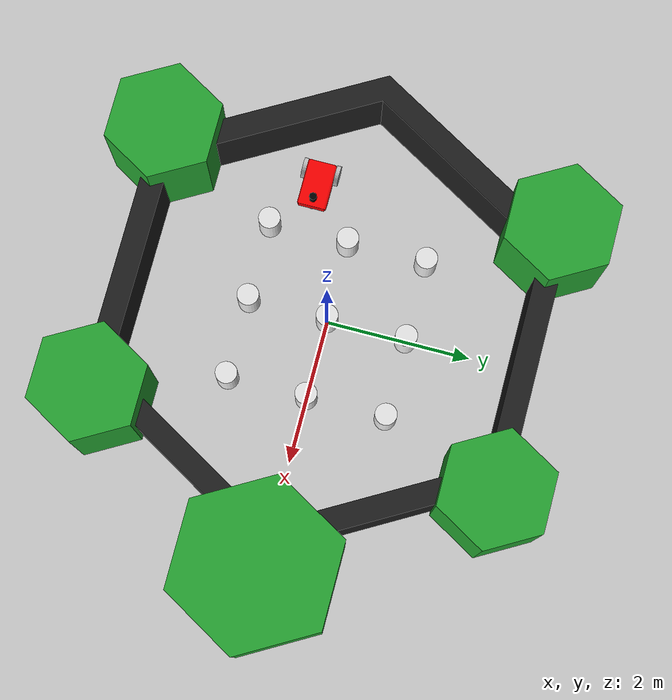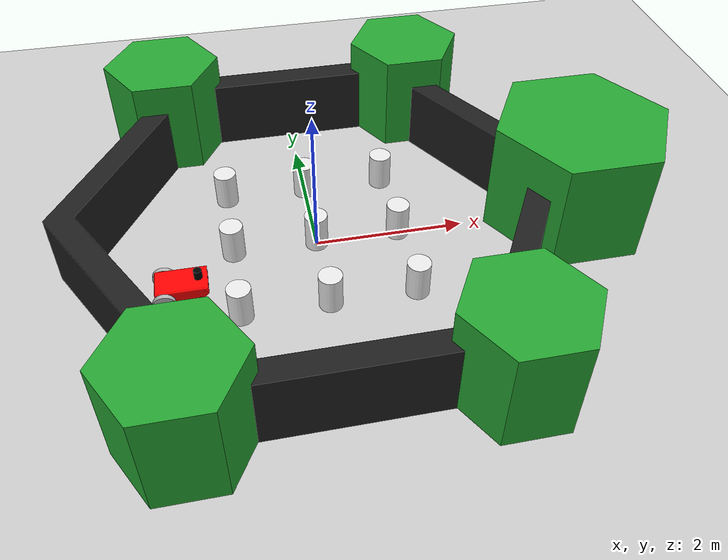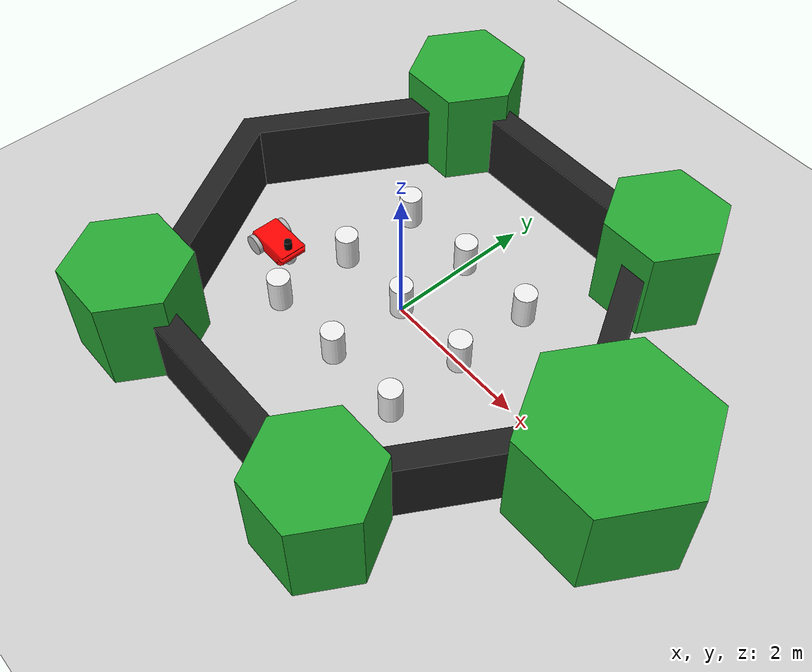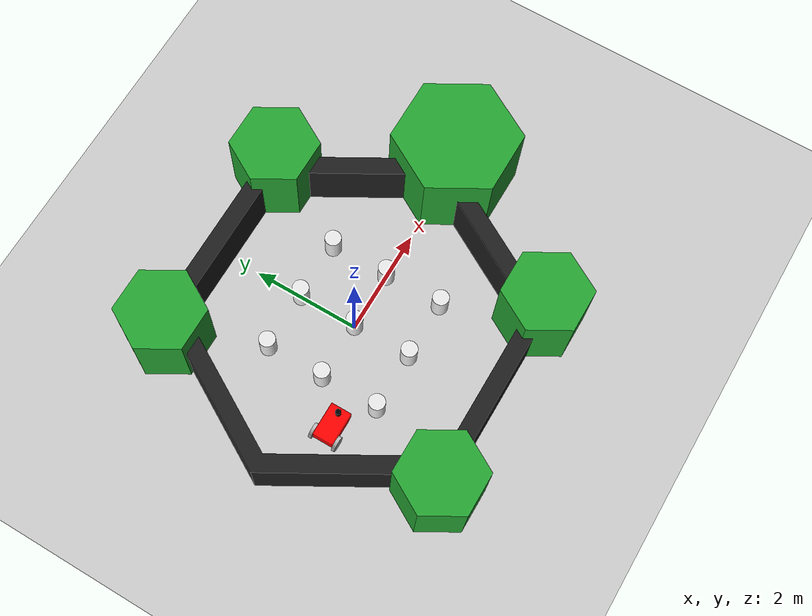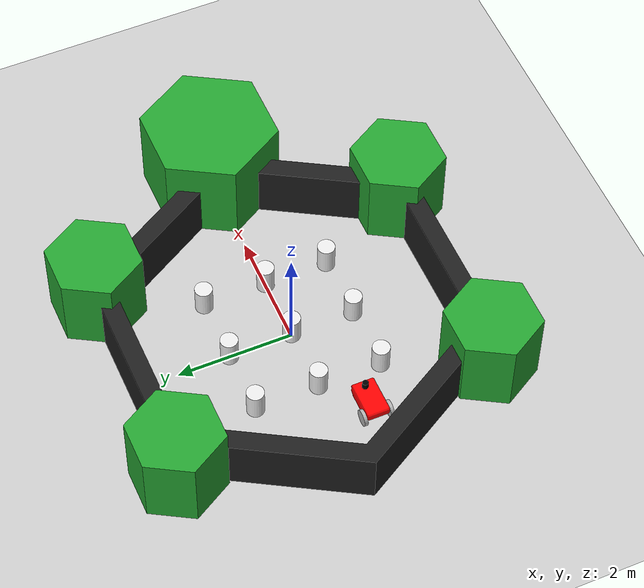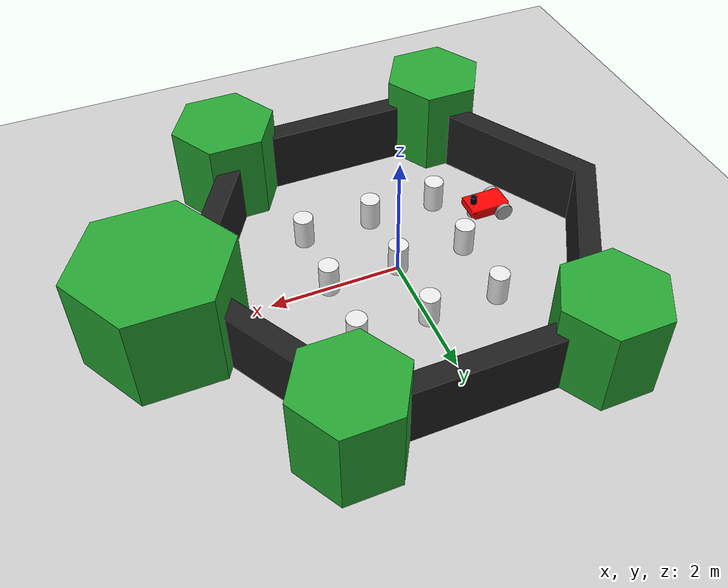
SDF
<sdf version="1.7">
 <world name="default">
  <model name="ground_plane">
   <static>1</static>
   <link name="link">
    <collision name="collision">
     <geometry><plane><normal>0 0 1</normal><size>100 100</size></plane></geometry>
     <surface>
      <contact><collide_bitmask>65535</collide_bitmask></contact>
      <friction><ode><mu>100</mu><mu2>50</mu2></ode></friction>
     </surface>
    </collision>
    <visual name="visual">
     <cast_shadows>0</cast_shadows>
     <geometry><plane><normal>0 0 1</normal><size>100 100</size></plane></geometry>
     <material>
      <script><uri>file://media/materials/scripts/gazebo.material</uri><name>Gazebo/Grey</name></script>
     </material>
    </visual>
   </link>
  </model>
  <light name="sun" type="directional">
   <pose>0 0 10 0 -0 0</pose>
   <diffuse>0.8 0.8 0.8 1</diffuse>
   <specular>0.2 0.2 0.2 1</specular>
   <attenuation>
    <range>1000</range>
    <constant>0.9</constant>
    <linear>0.01</linear>
    <quadratic>0.001</quadratic>
   </attenuation>
   <direction>-0.5 0.1 -0.9</direction>
   <spot><inner_angle>0</inner_angle><outer_angle>0</outer_angle><falloff>0</falloff></spot>
  </light>
  <scene><shadows>0</shadows><ambient>0.4 0.4 0.4 1</ambient><background>0.7 0.7 0.7 1</background></scene>
  <physics type="ode">
   <real_time_update_rate>1000</real_time_update_rate>
   <max_step_size>0.001</max_step_size>
   <real_time_factor>1</real_time_factor>
   <ode>
    <solver>
     <type>quick</type>
     <iters>150</iters>
     <precon_iters>0</precon_iters>
     <sor>1.4</sor>
     <use_dynamic_moi_rescaling>1</use_dynamic_moi_rescaling>
    </solver>
    <constraints>
     <cfm>1e-05</cfm>
     <erp>0.2</erp>
     <contact_max_correcting_vel>2000</contact_max_correcting_vel>
     <contact_surface_layer>0.01</contact_surface_layer>
    </constraints>
   </ode>
  </physics>
  <model name="turtlebot3_world">
   <static>1</static>
   <frame name="ros_symbol::__model__" attached_to="ros_symbol::symbol">
    <pose relative_to="__model__">0 0 0 0 -0 0</pose>
   </frame>
   <static>1</static>
   <link name="ros_symbol::symbol">
    <collision name="one_one">
     <pose>-1.1 -1.1 0.25 0 -0 0</pose>
     <geometry><cylinder><radius>0.15</radius><length>0.5</length></cylinder></geometry>
    </collision>
    <visual name="one_one">
     <pose>-1.1 -1.1 0.25 0 -0 0</pose>
     <geometry><cylinder><radius>0.15</radius><length>0.5</length></cylinder></geometry>
     <material>
      <script><uri>file://media/materials/scripts/gazebo.material</uri><name>Gazebo/White</name></script>
     </material>
    </visual>
    <collision name="one_two">
     <pose>-1.1 0 0.25 0 -0 0</pose>
     <geometry><cylinder><radius>0.15</radius><length>0.5</length></cylinder></geometry>
    </collision>
    <visual name="one_two">
     <pose>-1.1 0 0.25 0 -0 0</pose>
     <geometry><cylinder><radius>0.15</radius><length>0.5</length></cylinder></geometry>
     <material>
      <script><uri>file://media/materials/scripts/gazebo.material</uri><name>Gazebo/White</name></script>
     </material>
    </visual>
    <collision name="one_three">
     <pose>-1.1 1.1 0.25 0 -0 0</pose>
     <geometry><cylinder><radius>0.15</radius><length>0.5</length></cylinder></geometry>
    </collision>
    <visual name="one_three">
     <pose>-1.1 1.1 0.25 0 -0 0</pose>
     <geometry><cylinder><radius>0.15</radius><length>0.5</length></cylinder></geometry>
     <material>
      <script><uri>file://media/materials/scripts/gazebo.material</uri><name>Gazebo/White</name></script>
     </material>
    </visual>
    <collision name="two_one">
     <pose>0 -1.1 0.25 0 -0 0</pose>
     <geometry><cylinder><radius>0.15</radius><length>0.5</length></cylinder></geometry>
    </collision>
    <visual name="two_one">
     <pose>0 -1.1 0.25 0 -0 0</pose>
     <geometry><cylinder><radius>0.15</radius><length>0.5</length></cylinder></geometry>
     <material>
      <script><uri>file://media/materials/scripts/gazebo.material</uri><name>Gazebo/White</name></script>
     </material>
    </visual>
    <collision name="two_two">
     <pose>0 0 0.25 0 -0 0</pose>
     <geometry><cylinder><radius>0.15</radius><length>0.5</length></cylinder></geometry>
    </collision>
    <visual name="two_two">
     <pose>0 0 0.25 0 -0 0</pose>
     <geometry><cylinder><radius>0.15</radius><length>0.5</length></cylinder></geometry>
     <material>
      <script><uri>file://media/materials/scripts/gazebo.material</uri><name>Gazebo/White</name></script>
     </material>
    </visual>
    <collision name="two_three">
     <pose>0 1.1 0.25 0 -0 0</pose>
     <geometry><cylinder><radius>0.15</radius><length>0.5</length></cylinder></geometry>
    </collision>
    <visual name="two_three">
     <pose>0 1.1 0.25 0 -0 0</pose>
     <geometry><cylinder><radius>0.15</radius><length>0.5</length></cylinder></geometry>
     <material>
      <script><uri>file://media/materials/scripts/gazebo.material</uri><name>Gazebo/White</name></script>
     </material>
    </visual>
    <collision name="three_one">
     <pose>1.1 -1.1 0.25 0 -0 0</pose>
     <geometry><cylinder><radius>0.15</radius><length>0.5</length></cylinder></geometry>
    </collision>
    <visual name="three_one">
     <pose>1.1 -1.1 0.25 0 -0 0</pose>
     <geometry><cylinder><radius>0.15</radius><length>0.5</length></cylinder></geometry>
     <material>
      <script><uri>file://media/materials/scripts/gazebo.material</uri><name>Gazebo/White</name></script>
     </material>
    </visual>
    <collision name="three_two">
     <pose>1.1 0 0.25 0 -0 0</pose>
     <geometry><cylinder><radius>0.15</radius><length>0.5</length></cylinder></geometry>
    </collision>
    <visual name="three_two">
     <pose>1.1 0 0.25 0 -0 0</pose>
     <geometry><cylinder><radius>0.15</radius><length>0.5</length></cylinder></geometry>
     <material>
      <script><uri>file://media/materials/scripts/gazebo.material</uri><name>Gazebo/White</name></script>
     </material>
    </visual>
    <collision name="three_three">
     <pose>1.1 1.1 0.25 0 -0 0</pose>
     <geometry><cylinder><radius>0.15</radius><length>0.5</length></cylinder></geometry>
    </collision>
    <visual name="three_three">
     <pose>1.1 1.1 0.25 0 -0 0</pose>
     <geometry><cylinder><radius>0.15</radius><length>0.5</length></cylinder></geometry>
     <material>
      <script><uri>file://media/materials/scripts/gazebo.material</uri><name>Gazebo/White</name></script>
     </material>
    </visual>
    <collision name="head">
     <pose>3.5 0 -0.5 0 -0 0</pose>
     <geometry>
      <mesh><uri>model://turtlebot3_world/meshes/hexagon.dae</uri><scale>0.8 0.8 0.8</scale></mesh>
     </geometry>
    </collision>
    <visual name="head">
     <pose>3.5 0 -0.5 0 -0 0</pose>
     <geometry>
      <mesh><uri>model://turtlebot3_world/meshes/hexagon.dae</uri><scale>0.8 0.8 0.8</scale></mesh>
     </geometry>
     <material>
      <script><uri>file://media/materials/scripts/gazebo.material</uri><name>Gazebo/Green</name></script>
     </material>
    </visual>
    <collision name="left_hand">
     <pose>1.8 2.7 0 0 -0 0</pose>
     <geometry>
      <mesh><uri>model://turtlebot3_world/meshes/hexagon.dae</uri><scale>0.55 0.55 0.55</scale></mesh>
     </geometry>
    </collision>
    <visual name="left_hand">
     <pose>1.8 2.7 0 0 -0 0</pose>
     <geometry>
      <mesh><uri>model://turtlebot3_world/meshes/hexagon.dae</uri><scale>0.55 0.55 0.55</scale></mesh>
     </geometry>
     <material>
      <script><uri>file://media/materials/scripts/gazebo.material</uri><name>Gazebo/Green</name></script>
     </material>
    </visual>
    <collision name="right_hand">
     <pose>1.8 -2.7 0 0 -0 0</pose>
     <geometry>
      <mesh><uri>model://turtlebot3_world/meshes/hexagon.dae</uri><scale>0.55 0.55 0.55</scale></mesh>
     </geometry>
    </collision>
    <visual name="right_hand">
     <pose>1.8 -2.7 0 0 -0 0</pose>
     <geometry>
      <mesh><uri>model://turtlebot3_world/meshes/hexagon.dae</uri><scale>0.55 0.55 0.55</scale></mesh>
     </geometry>
     <material>
      <script><uri>file://media/materials/scripts/gazebo.material</uri><name>Gazebo/Green</name></script>
     </material>
    </visual>
    <collision name="left_foot">
     <pose>-1.8 2.7 0 0 -0 0</pose>
     <geometry>
      <mesh><uri>model://turtlebot3_world/meshes/hexagon.dae</uri><scale>0.55 0.55 0.55</scale></mesh>
     </geometry>
    </collision>
    <visual name="left_foot">
     <pose>-1.8 2.7 0 0 -0 0</pose>
     <geometry>
      <mesh><uri>model://turtlebot3_world/meshes/hexagon.dae</uri><scale>0.55 0.55 0.55</scale></mesh>
     </geometry>
     <material>
      <script><uri>file://media/materials/scripts/gazebo.material</uri><name>Gazebo/Green</name></script>
     </material>
    </visual>
    <collision name="right_foot">
     <pose>-1.8 -2.7 0 0 -0 0</pose>
     <geometry>
      <mesh><uri>model://turtlebot3_world/meshes/hexagon.dae</uri><scale>0.55 0.55 0.55</scale></mesh>
     </geometry>
    </collision>
    <visual name="right_foot">
     <pose>-1.8 -2.7 0 0 -0 0</pose>
     <geometry>
      <mesh><uri>model://turtlebot3_world/meshes/hexagon.dae</uri><scale>0.55 0.55 0.55</scale></mesh>
     </geometry>
     <material>
      <script><uri>file://media/materials/scripts/gazebo.material</uri><name>Gazebo/Green</name></script>
     </material>
    </visual>
    <collision name="body">
     <pose>0 0 -0.3 0 0 -1.5708</pose>
     <geometry>
      <mesh><uri>model://turtlebot3_world/meshes/wall.dae</uri><scale>0.25 0.25 0.25</scale></mesh>
     </geometry>
    </collision>
    <visual name="body">
     <pose>0 0 -0.3 0 0 -1.5708</pose>
     <geometry>
      <mesh><uri>model://turtlebot3_world/meshes/wall.dae</uri><scale>0.25 0.25 0.25</scale></mesh>
     </geometry>
     <material>
      <script><uri>file://media/materials/scripts/gazebo.material</uri><name>Gazebo/FlatBlack</name></script>
     </material>
    </visual>
    <pose relative_to="ros_symbol::__model__">0 0 0 0 -0 0</pose>
   </link>
  </model>
  <gravity>0 0 -9.8</gravity>
  <magnetic_field>6e-06 2.3e-05 -4.2e-05</magnetic_field>
  <atmosphere type="adiabatic"/>
  <audio><device>default</device></audio>
  <spherical_coordinates>
   <surface_model>EARTH_WGS84</surface_model>
   <latitude_deg>0</latitude_deg>
   <longitude_deg>0</longitude_deg>
   <elevation>0</elevation>
   <heading_deg>0</heading_deg>
  </spherical_coordinates>
  <model name="basic_mobile_bot">
   <static>0</static>
   <pose>-1.7807 -0.61237 0.189996 1e-06 1.5e-05 0.000755</pose>
   <link name="base_footprint">
    <inertial>
     <inertia><ixx>1</ixx><ixy>0</ixy><ixz>0</ixz><iyy>1</iyy><iyz>0</iyz><izz>1</izz></inertia>
     <mass>1</mass>
    </inertial>
   </link>
   <link name="base_link">
    <collision name="base_collision">
     <pose>0 0 0.1 0 -0 0</pose>
     <geometry><box><size>0.7 0.39 0.2</size></box></geometry>
    </collision>
    <visual name="base_visual">
     <pose>0 0 -0.05 1.5708 -0 -3.14159</pose>
     <geometry>
      <mesh><uri>model://basic_mobile_bot_description/meshes/robot_base.stl</uri><scale>1 1 1</scale></mesh>
     </geometry>
     <material>
      <ambient>1 0 0 1</ambient>
      <diffuse>1 0 0 1</diffuse>
      <specular>0 0 0 1</specular>
      <emissive>0 0 0 1</emissive>
     </material>
    </visual>
    <inertial>
     <inertia><ixx>1</ixx><ixy>0</ixy><ixz>0</ixz><iyy>1</iyy><iyz>0</iyz><izz>1</izz></inertia>
     <mass>1</mass>
    </inertial>
   </link>
   <link name="imu_link">
    <sensor name="bmb_imu" type="imu">
     <always_on>1</always_on>
     <update_rate>100</update_rate>
     <visualize>1</visualize>
     <imu>
      <angular_velocity>
       <x><noise type="gaussian"><mean>0</mean><stddev>0.0002</stddev></noise></x>
       <y><noise type="gaussian"><mean>0</mean><stddev>0.0002</stddev></noise></y>
       <z><noise type="gaussian"><mean>0</mean><stddev>0.0002</stddev></noise></z>
      </angular_velocity>
      <linear_acceleration>
       <x><noise type="gaussian"><mean>0</mean><stddev>0.017</stddev></noise></x>
       <y><noise type="gaussian"><mean>0</mean><stddev>0.017</stddev></noise></y>
       <z><noise type="gaussian"><mean>0</mean><stddev>0.017</stddev></noise></z>
      </linear_acceleration>
      <orientation>
       <x><noise type="gaussian"><mean>0.0</mean><stddev>2e-3</stddev></noise></x>
       <y><noise type="gaussian"><mean>0.0</mean><stddev>2e-3</stddev></noise></y>
       <z><noise type="gaussian"><mean>0.0</mean><stddev>2e-3</stddev></noise></z>
      </orientation>
     </imu>
     <plugin name="basic_mobile_bot_imu" filename="libgazebo_ros_imu_sensor.so">
      <initial_orientation_as_reference>0</initial_orientation_as_reference>
      <frame_name>imu_link</frame_name>
      <ros><namespace>/imu</namespace><remapping>~/out:=data</remapping></ros>
     </plugin>
    </sensor>
    <inertial>
     <inertia><ixx>1</ixx><ixy>0</ixy><ixz>0</ixz><iyy>1</iyy><iyz>0</iyz><izz>1</izz></inertia>
     <mass>1</mass>
    </inertial>
   </link>
   <link name="gps_link">
    <sensor name="bmb_gps" type="gps">
     <always_on>1</always_on>
     <update_rate>10</update_rate>
     <gps>
      <position_sensing>
       <horizontal><noise type="gaussian"><mean>0</mean><stddev>0.01</stddev></noise></horizontal>
       <vertical><noise type="gaussian"><mean>0</mean><stddev>1</stddev></noise></vertical>
      </position_sensing>
     </gps>
     <plugin name="basic_mobile_bot_gps" filename="libgazebo_ros_gps_sensor.so">
      <ros><remapping>~/out:=gps/fix</remapping></ros>
     </plugin>
    </sensor>
    <inertial>
     <inertia><ixx>1</ixx><ixy>0</ixy><ixz>0</ixz><iyy>1</iyy><iyz>0</iyz><izz>1</izz></inertia>
     <mass>1</mass>
    </inertial>
   </link>
   <link name="lidar_link">
    <inertial>
     <pose>0.215 0 0.13 0 -0 0</pose>
     <inertia><ixx>0.001</ixx><ixy>0</ixy><ixz>0</ixz><iyy>0.001</iyy><iyz>0</iyz><izz>0.001</izz></inertia>
     <mass>0.114</mass>
    </inertial>
    <collision name="lidar_collision">
     <pose>0.215 0 0.13 0 -0 0</pose>
     <geometry><cylinder><radius>0.0508</radius><length>0.18</length></cylinder></geometry>
    </collision>
    <visual name="lidar_visual">
     <pose>0.215 0 0.13 0 -0 0</pose>
     <geometry><cylinder><radius>0.0508</radius><length>0.18</length></cylinder></geometry>
     <material>
      <ambient>0 0 0 1</ambient>
      <diffuse>0 0 0 1</diffuse>
      <specular>0 0 0 1</specular>
      <emissive>0 0 0 1</emissive>
     </material>
    </visual>
    <sensor name="lidar" type="ray">
     <pose>0.215 0 0.215 0 -0 0</pose>
     <always_on>1</always_on>
     <visualize>1</visualize>
     <update_rate>5</update_rate>
     <ray>
      <scan>
       <horizontal>
        <samples>120</samples>
        <resolution>1</resolution>
        <min_angle>-3.14159</min_angle>
        <max_angle>3.14159</max_angle>
       </horizontal>
       <vertical><samples>1</samples><min_angle>0</min_angle><max_angle>0</max_angle></vertical>
      </scan>
      <range><min>0.3</min><max>15</max><resolution>0.015</resolution></range>
      <noise><type>gaussian</type><mean>0</mean><stddev>0.01</stddev></noise>
     </ray>
     <plugin name="scan" filename="libgazebo_ros_ray_sensor.so">
      <ros><remapping>~/out:=scan</remapping></ros>
      <output_type>sensor_msgs/LaserScan</output_type>
      <frame_name>lidar_link</frame_name>
     </plugin>
    </sensor>
   </link>
   <link name="drivewhl_l_link">
    <pose>-0.221 0.23 -0.05 3.14159 1.57079 -1.57079</pose>
    <collision name="drivewhl_l_collision">
     <geometry><cylinder><radius>0.14</radius><length>0.06</length></cylinder></geometry>
    </collision>
    <visual name="drivewhl_l_visual">
     <geometry><cylinder><radius>0.14</radius><length>0.06</length></cylinder></geometry>
    </visual>
    <inertial>
     <inertia><ixx>1</ixx><ixy>0</ixy><ixz>0</ixz><iyy>1</iyy><iyz>0</iyz><izz>1</izz></inertia>
     <mass>1</mass>
    </inertial>
   </link>
   <link name="drivewhl_r_link">
    <pose>-0.221 -0.23 -0.05 3.14159 1.57079 -1.57079</pose>
    <collision name="drivewhl_r_collision">
     <geometry><cylinder><radius>0.14</radius><length>0.06</length></cylinder></geometry>
    </collision>
    <visual name="drivewhl_r_visual">
     <geometry><cylinder><radius>0.14</radius><length>0.06</length></cylinder></geometry>
    </visual>
    <inertial>
     <inertia><ixx>1</ixx><ixy>0</ixy><ixz>0</ixz><iyy>1</iyy><iyz>0</iyz><izz>1</izz></inertia>
     <mass>1</mass>
    </inertial>
   </link>
   <link name="front_caster">
    <pose>0.217 0 -0.1 0 -0 0</pose>
    <inertial>
     <inertia><ixx>0.001</ixx><ixy>0</ixy><ixz>0</ixz><iyy>0.001</iyy><iyz>0</iyz><izz>0.001</izz></inertia>
     <mass>70</mass>
    </inertial>
    <collision name="collision">
     <geometry><sphere><radius>0.09</radius></sphere></geometry>
     <surface>
      <friction><ode><mu>0.01</mu><mu2>0.01</mu2><slip1>1</slip1><slip2>1</slip2></ode></friction>
     </surface>
    </collision>
    <visual name="front_caster_visual"><geometry><sphere><radius>0.09</radius></sphere></geometry></visual>
   </link>
   <joint name="base_joint" type="fixed"><parent>base_footprint</parent><child>base_link</child></joint>
   <joint name="drivewhl_l_joint" type="revolute">
    <parent>base_link</parent>
    <child>drivewhl_l_link</child>
    <axis>
     <xyz>0 0 1</xyz>
     <limit><lower>-1e+16</lower><upper>1e+16</upper></limit>
     <dynamics><spring_reference>0</spring_reference><spring_stiffness>0</spring_stiffness></dynamics>
    </axis>
   </joint>
   <joint name="drivewhl_r_joint" type="revolute">
    <parent>base_link</parent>
    <child>drivewhl_r_link</child>
    <axis>
     <xyz>0 0 1</xyz>
     <limit><lower>-1e+16</lower><upper>1e+16</upper></limit>
     <dynamics><spring_reference>0</spring_reference><spring_stiffness>0</spring_stiffness></dynamics>
    </axis>
   </joint>
   <joint name="caster_joint" type="fixed"><parent>base_link</parent><child>front_caster</child></joint>
   <joint name="imu_joint" type="fixed"><parent>base_link</parent><child>imu_link</child></joint>
   <joint name="gps_joint" type="fixed"><parent>base_link</parent><child>gps_link</child></joint>
   <joint name="lidar_joint" type="fixed"><parent>base_link</parent><child>lidar_link</child></joint>
   <plugin name="basic_mobile_bot_diff_drive" filename="libgazebo_ros_diff_drive.so">
    <update_rate>30</update_rate>
    <left_joint>drivewhl_l_joint</left_joint>
    <right_joint>drivewhl_r_joint</right_joint>
    <wheel_separation>0.52</wheel_separation>
    <wheel_diameter>0.28</wheel_diameter>
    <max_wheel_torque>20</max_wheel_torque>
    <max_wheel_acceleration>1.0</max_wheel_acceleration>
    <command_topic>cmd_vel</command_topic>
    <publish_odom>1</publish_odom>
    <publish_odom_tf>0</publish_odom_tf>
    <publish_wheel_tf>0</publish_wheel_tf>
    <odometry_topic>odom</odometry_topic>
    <odometry_frame>odom</odometry_frame>
    <robot_base_frame>base_footprint</robot_base_frame>
    <odometry_source>1</odometry_source>
    <ros><remapping>odom:=wheel/odometry</remapping></ros>
   </plugin>
   <plugin name="basic_mobile_bot_joint_state" filename="libgazebo_ros_joint_state_publisher.so">
    <ros><remapping>~/out:=joint_states</remapping></ros>
    <update_rate>30</update_rate>
    <joint_name>drivewhl_l_joint</joint_name>
    <joint_name>drivewhl_r_joint</joint_name>
   </plugin>
  </model>
 </world>
</sdf>
